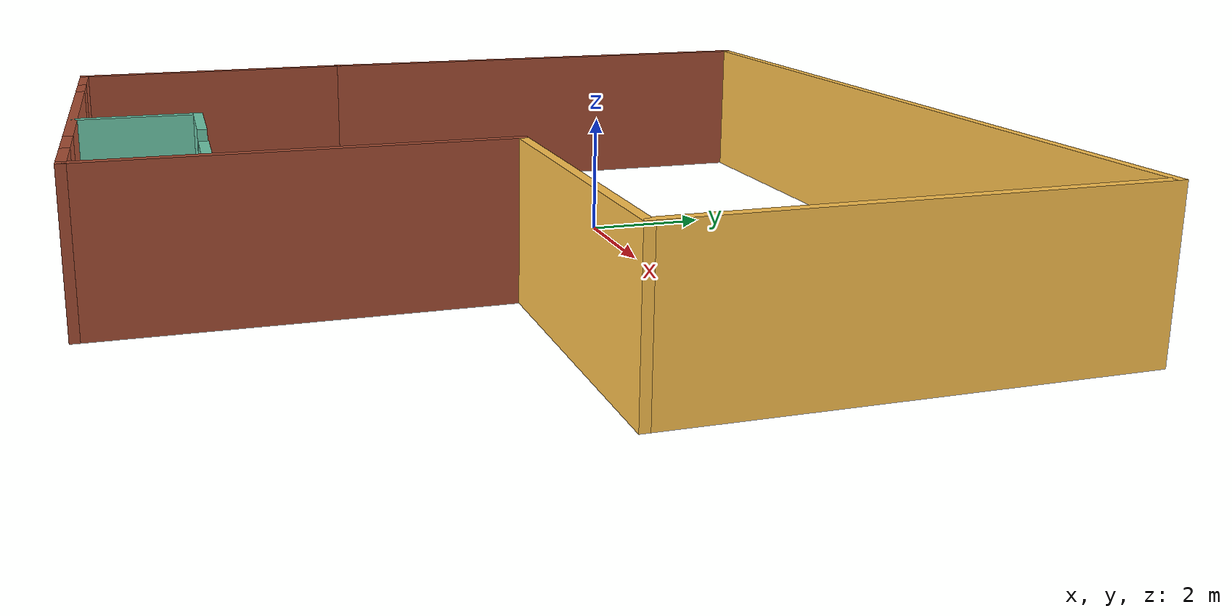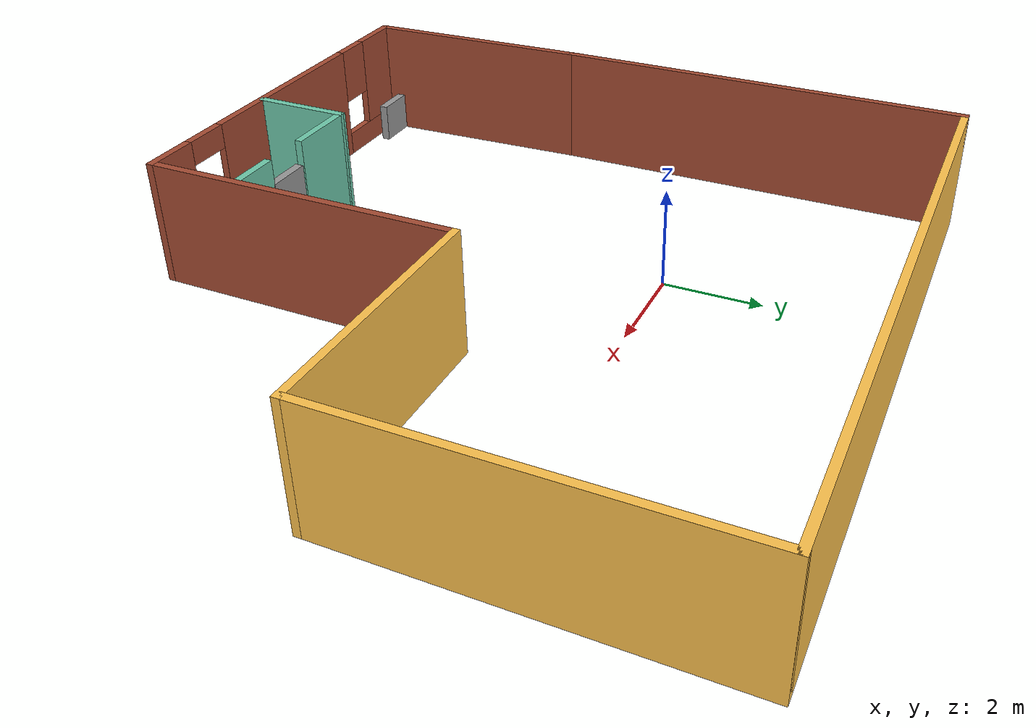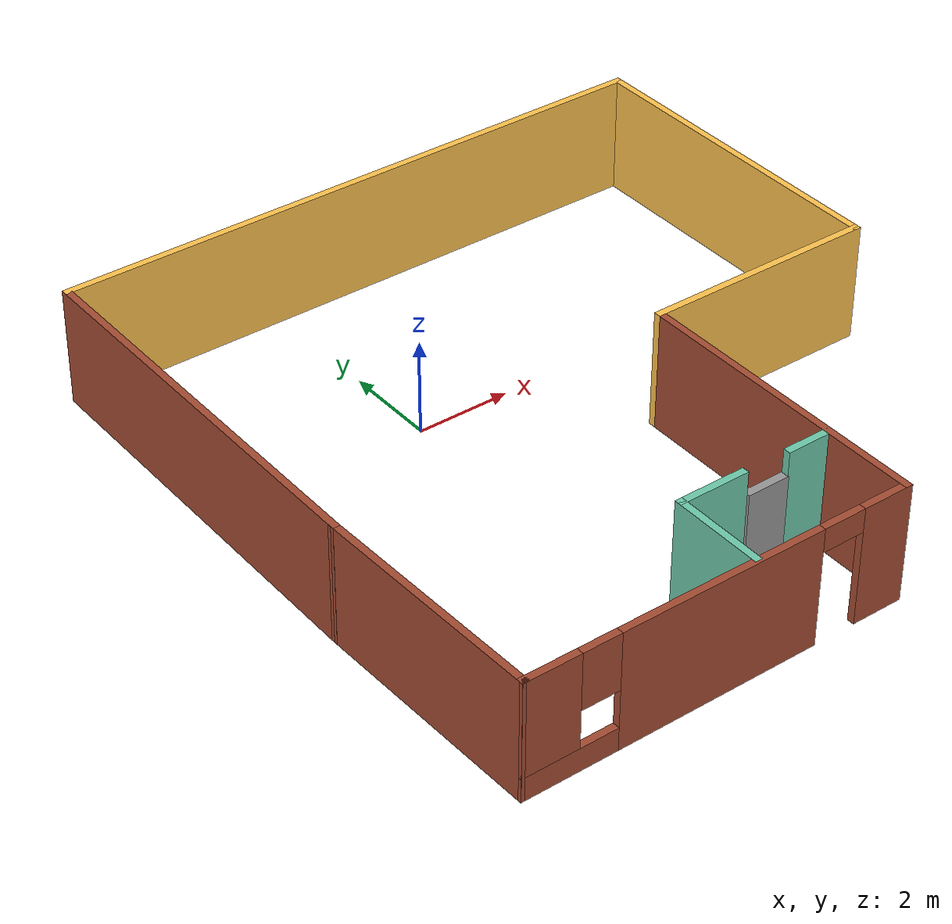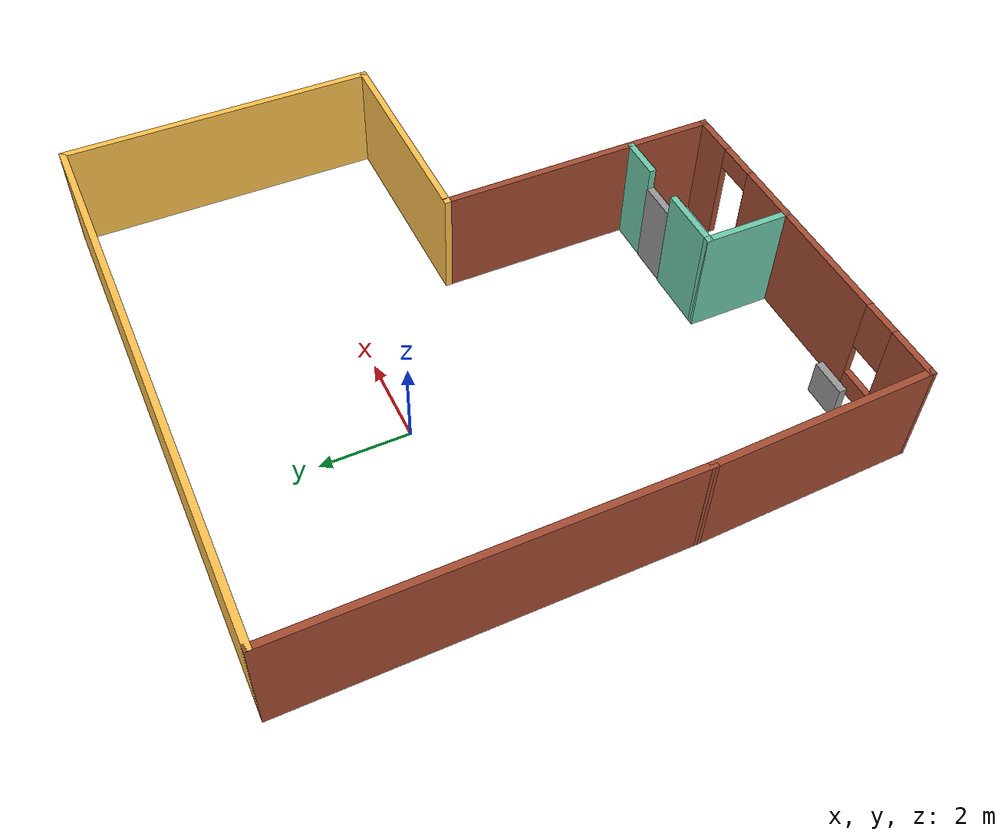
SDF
<?xml version='1.0'?>
<sdf version='1.6'>
  <model name='model'>
    <pose frame=''>1.93886 -2.06614 0 0 -0 0</pose>
    <link name='Door_2'>
      <collision name='Door_2_Collision'>
        <geometry>
          <box>
            <size>0.9 0.17 2</size>
          </box>
        </geometry>
        <pose frame=''>0 0 1 0 -0 0</pose>
      </collision>
      <visual name='Door_2_Visual'>
        <pose frame=''>0 0 1 0 -0 0</pose>
        <geometry>
          <box>
            <size>0.9 0.17 2</size>
          </box>
        </geometry>
        <material>
          <script>
            <uri>file://media/materials/scripts/gazebo.material</uri>
            <name>Gazebo/Grey</name>
          </script>
        </material>
      </visual>
      <pose frame=''>0.291043 -4.84192 0 0 -0 0</pose>
    </link>
    <link name='Wall_0'>
      <collision name='Wall_0_Collision'>
        <geometry>
          <box>
            <size>8.75 0.15 2.5</size>
          </box>
        </geometry>
        <pose frame=''>0 0 1.25 0 -0 0</pose>
      </collision>
      <visual name='Wall_0_Visual'>
        <pose frame=''>0 0 1.25 0 -0 0</pose>
        <geometry>
          <box>
            <size>8.75 0.15 2.5</size>
          </box>
        </geometry>
        <material>
          <script>
            <uri>file://media/materials/scripts/gazebo.material</uri>
            <name>Gazebo/Bricks</name>
          </script>
          <ambient>1 1 1 1</ambient>
        </material>
      </visual>
      <pose frame=''>-6.54886 2.42614 0 0 -0 1.5708</pose>
    </link>
    <link name='Wall_1'>
      <collision name='Wall_1_Collision'>
        <geometry>
          <box>
            <size>13.25 0.15 2.5</size>
          </box>
        </geometry>
        <pose frame=''>0 0 1.25 0 -0 0</pose>
      </collision>
      <visual name='Wall_1_Visual'>
        <pose frame=''>0 0 1.25 0 -0 0</pose>
        <geometry>
          <box>
            <size>13.25 0.15 2.5</size>
          </box>
        </geometry>
        <material>
          <script>
            <uri>file://media/materials/scripts/gazebo.material</uri>
            <name>Gazebo/Grey</name>
          </script>
          <ambient>1 0.764706 0.305882 1</ambient>
        </material>
      </visual>
      <pose frame=''>0.001141 6.72614 0 0 -0 0</pose>
    </link>
    <link name='Wall_16'>
      <collision name='Wall_16_Collision'>
        <geometry>
          <box>
            <size>2 0.15 2.5</size>
          </box>
        </geometry>
        <pose frame=''>0 0 1.25 0 -0 0</pose>
      </collision>
      <visual name='Wall_16_Visual'>
        <pose frame=''>0 0 1.25 0 -0 0</pose>
        <geometry>
          <box>
            <size>2 0.15 2.5</size>
          </box>
        </geometry>
        <material>
          <script>
            <uri>file://media/materials/scripts/gazebo.material</uri>
            <name>Gazebo/Grey</name>
          </script>
          <ambient>0.435294 0.796078 0.67451 1</ambient>
        </material>
      </visual>
      <pose frame=''>-1.60567 -5.74424 0 0 -0 1.5708</pose>
    </link>
    <link name='Wall_17'>
      <collision name='Wall_17_Collision'>
        <geometry>
          <box>
            <size>1.5 0.15 2.5</size>
          </box>
        </geometry>
        <pose frame=''>0 0 1.25 0 -0 0</pose>
      </collision>
      <visual name='Wall_17_Visual'>
        <pose frame=''>0 0 1.25 0 -0 0</pose>
        <geometry>
          <box>
            <size>1.5 0.15 2.5</size>
          </box>
        </geometry>
        <material>
          <script>
            <uri>file://media/materials/scripts/gazebo.material</uri>
            <name>Gazebo/Grey</name>
          </script>
          <ambient>0.435294 0.796078 0.67451 1</ambient>
        </material>
      </visual>
      <pose frame=''>-0.930667 -4.81924 0 0 -0 0</pose>
    </link>
    <link name='Wall_19'>
      <collision name='Wall_19_Collision'>
        <geometry>
          <box>
            <size>1 0.15 2.5</size>
          </box>
        </geometry>
        <pose frame=''>0 0 1.25 0 -0 0</pose>
      </collision>
      <visual name='Wall_19_Visual'>
        <pose frame=''>0 0 1.25 0 -0 0</pose>
        <geometry>
          <box>
            <size>1 0.15 2.5</size>
          </box>
        </geometry>
        <material>
          <script>
            <uri>file://media/materials/scripts/gazebo.material</uri>
            <name>Gazebo/Grey</name>
          </script>
          <ambient>0.435294 0.796078 0.67451 1</ambient>
        </material>
      </visual>
      <pose frame=''>1.22492 -4.84192 0 0 -0 0</pose>
    </link>
    <link name='Wall_3'>
      <collision name='Wall_3_Collision'>
        <geometry>
          <box>
            <size>7.25 0.15 2.5</size>
          </box>
        </geometry>
        <pose frame=''>0 0 1.25 0 -0 0</pose>
      </collision>
      <visual name='Wall_3_Visual'>
        <pose frame=''>0 0 1.25 0 -0 0</pose>
        <geometry>
          <box>
            <size>7.25 0.15 2.5</size>
          </box>
        </geometry>
        <material>
          <script>
            <uri>file://media/materials/scripts/gazebo.material</uri>
            <name>Gazebo/Grey</name>
          </script>
          <ambient>1 0.764706 0.305882 1</ambient>
        </material>
      </visual>
      <pose frame=''>6.55114 3.17614 0 0 0 -1.5708</pose>
    </link>
    <link name='Wall_4'>
      <collision name='Wall_4_Collision'>
        <geometry>
          <box>
            <size>5 0.15 2.5</size>
          </box>
        </geometry>
        <pose frame=''>0 0 1.25 0 -0 0</pose>
      </collision>
      <visual name='Wall_4_Visual'>
        <pose frame=''>0 0 1.25 0 -0 0</pose>
        <geometry>
          <box>
            <size>5 0.15 2.5</size>
          </box>
        </geometry>
        <material>
          <script>
            <uri>file://media/materials/scripts/gazebo.material</uri>
            <name>Gazebo/Grey</name>
          </script>
          <ambient>1 0.764706 0.305882 1</ambient>
        </material>
      </visual>
      <pose frame=''>4.12614 -0.373859 0 0 -0 3.14159</pose>
    </link>
    <link name='Wall_5'>
      <collision name='Wall_5_Collision'>
        <geometry>
          <box>
            <size>6.5 0.15 2.5</size>
          </box>
        </geometry>
        <pose frame=''>0 0 1.25 0 -0 0</pose>
      </collision>
      <visual name='Wall_5_Visual'>
        <pose frame=''>0 0 1.25 0 -0 0</pose>
        <geometry>
          <box>
            <size>6.5 0.15 2.5</size>
          </box>
        </geometry>
        <material>
          <script>
            <uri>file://media/materials/scripts/gazebo.material</uri>
            <name>Gazebo/Bricks</name>
          </script>
          <ambient>1 1 1 1</ambient>
        </material>
      </visual>
      <pose frame=''>1.70114 -3.54886 0 0 0 -1.5708</pose>
    </link>
    <link name='Wall_6'>
      <pose frame=''>-2.34886 -6.72386 0 0 -0 3.14159</pose>
      <visual name='Wall_6_Visual_0'>
        <pose frame=''>-3.58432 0 1.25 0 -0 0</pose>
        <geometry>
          <box>
            <size>1.08136 0.15 2.5</size>
          </box>
        </geometry>
        <material>
          <script>
            <uri>file://media/materials/scripts/gazebo.material</uri>
            <name>Gazebo/Bricks</name>
          </script>
          <ambient>1 1 1 1</ambient>
        </material>
      </visual>
      <collision name='Wall_6_Collision_0'>
        <geometry>
          <box>
            <size>1.08136 0.15 2.5</size>
          </box>
        </geometry>
        <pose frame=''>-3.58432 0 1.25 0 -0 0</pose>
      </collision>
      <visual name='Wall_6_Visual_1'>
        <pose frame=''>-0.001144 0 1.25 0 -0 0</pose>
        <geometry>
          <box>
            <size>4.285 0.15 2.5</size>
          </box>
        </geometry>
        <material>
          <script>
            <uri>file://media/materials/scripts/gazebo.material</uri>
            <name>Gazebo/Bricks</name>
          </script>
          <ambient>1 1 1 1</ambient>
        </material>
      </visual>
      <collision name='Wall_6_Collision_1'>
        <geometry>
          <box>
            <size>4.285 0.15 2.5</size>
          </box>
        </geometry>
        <pose frame=''>-0.001144 0 1.25 0 -0 0</pose>
      </collision>
      <visual name='Wall_6_Visual_2'>
        <pose frame=''>3.13318 0 0.25 0 -0 0</pose>
        <geometry>
          <box>
            <size>1.98365 0.15 0.5</size>
          </box>
        </geometry>
        <material>
          <script>
            <uri>file://media/materials/scripts/gazebo.material</uri>
            <name>Gazebo/Bricks</name>
          </script>
          <ambient>1 1 1 1</ambient>
        </material>
      </visual>
      <collision name='Wall_6_Collision_2'>
        <geometry>
          <box>
            <size>1.98365 0.15 0.5</size>
          </box>
        </geometry>
        <pose frame=''>3.13318 0 0.25 0 -0 0</pose>
      </collision>
      <visual name='Wall_6_Visual_3'>
        <pose frame=''>3.53318 0 1.5 0 -0 0</pose>
        <geometry>
          <box>
            <size>1.18365 0.15 2</size>
          </box>
        </geometry>
        <material>
          <script>
            <uri>file://media/materials/scripts/gazebo.material</uri>
            <name>Gazebo/Bricks</name>
          </script>
          <ambient>1 1 1 1</ambient>
        </material>
      </visual>
      <collision name='Wall_6_Collision_3'>
        <geometry>
          <box>
            <size>1.18365 0.15 2</size>
          </box>
        </geometry>
        <pose frame=''>3.53318 0 1.5 0 -0 0</pose>
      </collision>
      <visual name='Wall_6_Visual_4'>
        <pose frame=''>2.54135 0 1.9 0 -0 0</pose>
        <geometry>
          <box>
            <size>0.8 0.15 1.2</size>
          </box>
        </geometry>
        <material>
          <script>
            <uri>file://media/materials/scripts/gazebo.material</uri>
            <name>Gazebo/Bricks</name>
          </script>
          <ambient>1 1 1 1</ambient>
        </material>
      </visual>
      <collision name='Wall_6_Collision_4'>
        <geometry>
          <box>
            <size>0.8 0.15 1.2</size>
          </box>
        </geometry>
        <pose frame=''>2.54135 0 1.9 0 -0 0</pose>
      </collision>
      <visual name='Wall_6_Visual_5'>
        <pose frame=''>-2.59364 0 2.25 0 -0 0</pose>
        <geometry>
          <box>
            <size>0.9 0.15 0.5</size>
          </box>
        </geometry>
        <material>
          <script>
            <uri>file://media/materials/scripts/gazebo.material</uri>
            <name>Gazebo/Bricks</name>
          </script>
          <ambient>1 1 1 1</ambient>
        </material>
      </visual>
      <collision name='Wall_6_Collision_5'>
        <geometry>
          <box>
            <size>0.9 0.15 0.5</size>
          </box>
        </geometry>
        <pose frame=''>-2.59364 0 2.25 0 -0 0</pose>
      </collision>
    </link>
    <link name='Wall_7'>
      <collision name='Wall_7_Collision'>
        <geometry>
          <box>
            <size>5.00232 0.15 2.5</size>
          </box>
        </geometry>
        <pose frame=''>0 0 1.25 0 -0 0</pose>
      </collision>
      <visual name='Wall_7_Visual'>
        <pose frame=''>0 0 1.25 0 -0 0</pose>
        <geometry>
          <box>
            <size>5.00232 0.15 2.5</size>
          </box>
        </geometry>
        <material>
          <script>
            <uri>file://media/materials/scripts/gazebo.material</uri>
            <name>Gazebo/Bricks</name>
          </script>
          <ambient>1 1 1 1</ambient>
        </material>
      </visual>
      <pose frame=''>-6.47386 -4.29886 0 0 -0 1.60171</pose>
    </link>
    <link name='Window_0'>
      <collision name='Window_0_Collision'>
        <geometry>
          <box>
            <size>0.8 0.17 0.8</size>
          </box>
        </geometry>
        <pose frame=''>0 0 0.4 0 -0 0</pose>
      </collision>
      <visual name='Window_0_Visual'>
        <pose frame=''>0 0 0.4 0 -0 0</pose>
        <geometry>
          <box>
            <size>0.8 0.17 0.8</size>
          </box>
        </geometry>
        <material>
          <script>
            <uri>file://media/materials/scripts/gazebo.material</uri>
            <name>Gazebo/Grey</name>
          </script>
        </material>
      </visual>
      <pose frame=''>-4.99748 -5.76656 0.5 0 -0 0</pose>
    </link>
    <static>1</static>
  </model>
</sdf>
